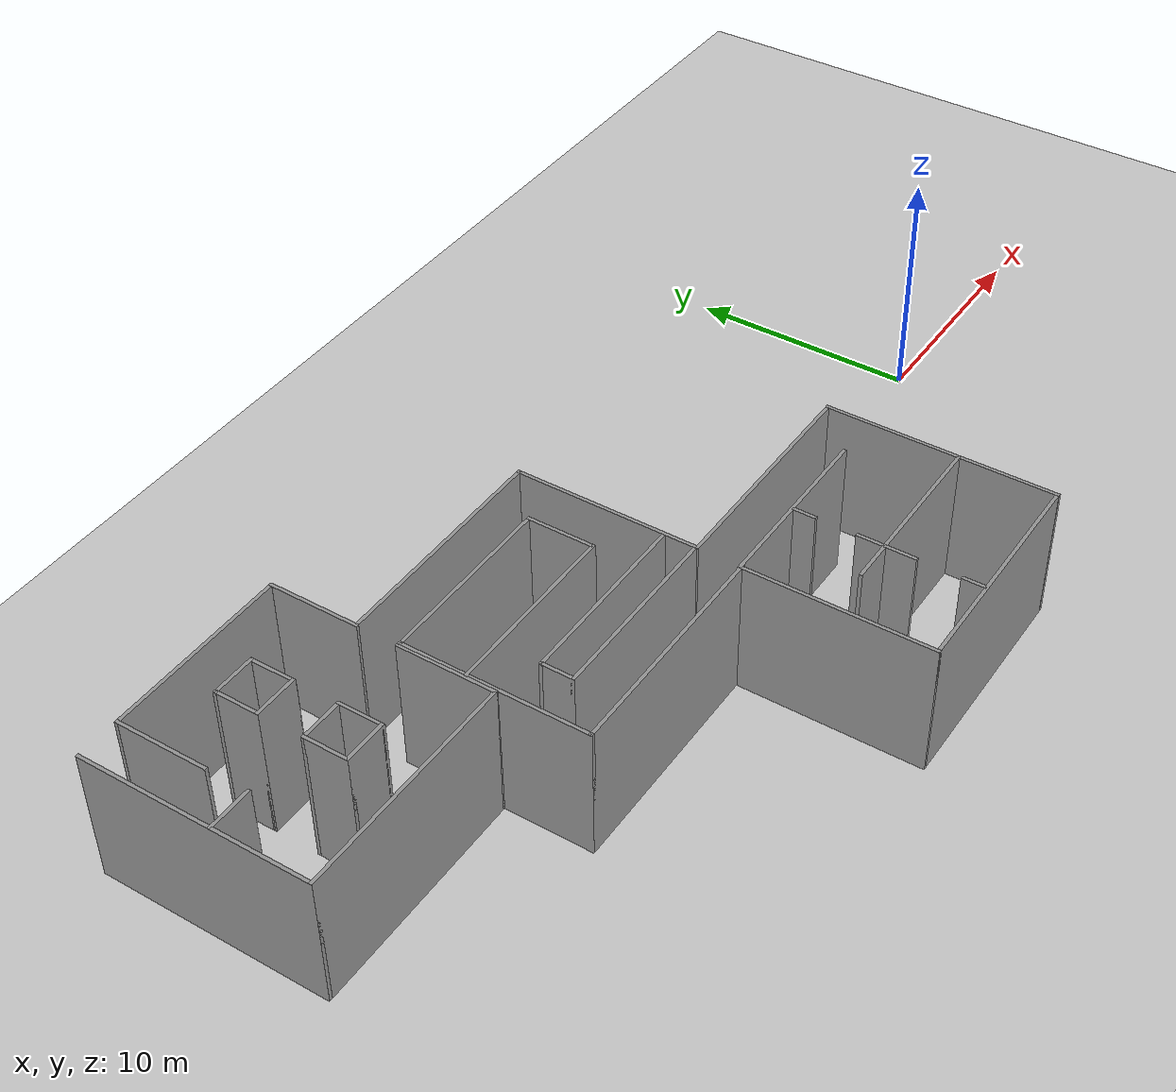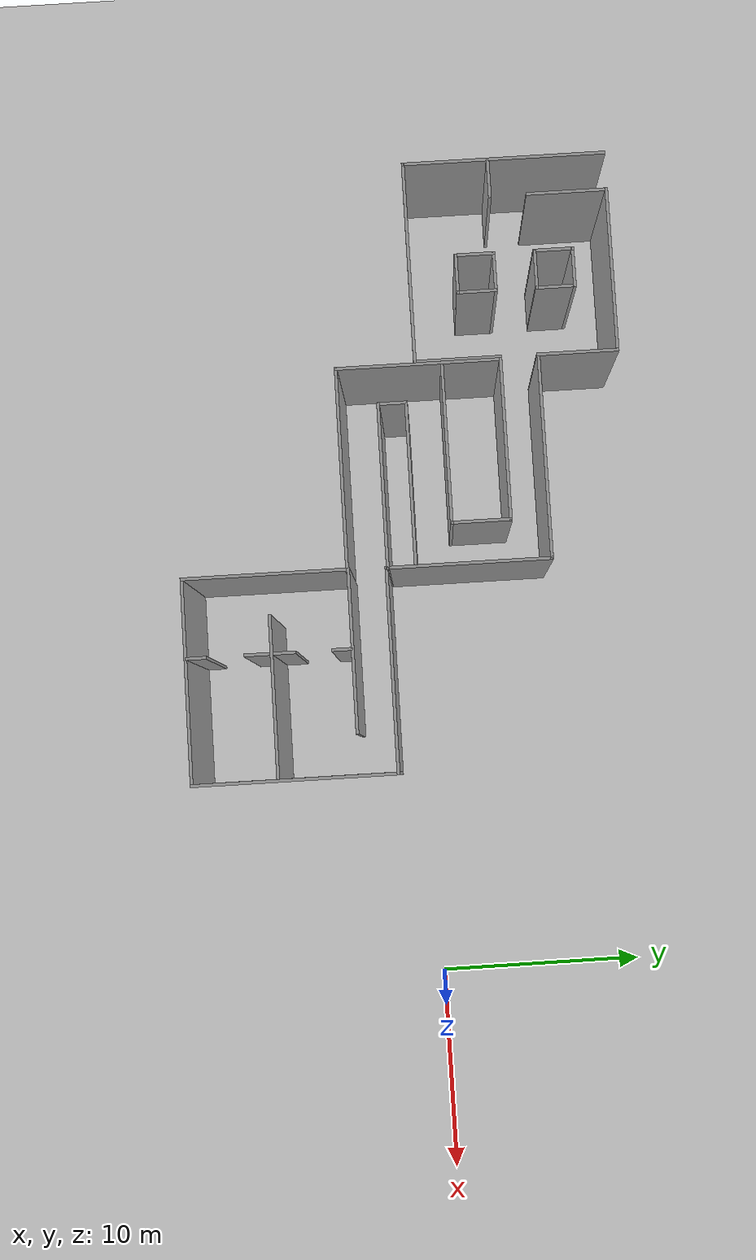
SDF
<sdf version="1.6">
 <world name="default">
  <model name="ground_plane">
   <static>1</static>
   <link name="link">
    <collision name="collision">
     <geometry><plane><normal>0 0 1</normal><size>100 100</size></plane></geometry>
     <surface>
      <contact><collide_bitmask>65535</collide_bitmask></contact>
      <friction><ode><mu>100</mu><mu2>50</mu2></ode></friction>
     </surface>
    </collision>
    <visual name="visual">
     <cast_shadows>0</cast_shadows>
     <geometry><plane><normal>0 0 1</normal><size>100 100</size></plane></geometry>
     <material>
      <script><uri>file://media/materials/scripts/gazebo.material</uri><name>Gazebo/Grey</name></script>
     </material>
    </visual>
   </link>
  </model>
  <model name="floor01_clone">
   <pose>-25.0322 1.41171 0 0 -0 0</pose>
   <link name="Wall_119">
    <collision name="Wall_119_Collision">
     <geometry><box><size>10 0.15 6</size></box></geometry>
     <pose>0 0 3 0 -0 0</pose>
    </collision>
    <visual name="Wall_119_Visual">
     <pose>0 0 3 0 -0 0</pose>
     <geometry><box><size>10 0.15 6</size></box></geometry>
     <material>
      <script><uri>file://media/materials/scripts/gazebo.material</uri><name>Gazebo/Grey</name></script>
      <ambient>1 1 1 1</ambient>
     </material>
     <meta><layer>0</layer></meta>
    </visual>
    <pose>0 -4.925 0 0 -0 0</pose>
   </link>
   <link name="Wall_121">
    <collision name="Wall_121_Collision">
     <geometry><box><size>10 0.15 6</size></box></geometry>
     <pose>0 0 3 0 -0 0</pose>
    </collision>
    <visual name="Wall_121_Visual">
     <pose>0 0 3 0 -0 0</pose>
     <geometry><box><size>10 0.15 6</size></box></geometry>
     <material>
      <script><uri>file://media/materials/scripts/gazebo.material</uri><name>Gazebo/Grey</name></script>
      <ambient>1 1 1 1</ambient>
     </material>
     <meta><layer>0</layer></meta>
    </visual>
    <pose>0 4.925 0 0 -0 3.14159</pose>
   </link>
   <link name="Wall_124">
    <collision name="Wall_124_Collision">
     <geometry><box><size>8 0.15 6</size></box></geometry>
     <pose>0 0 3 0 -0 0</pose>
    </collision>
    <visual name="Wall_124_Visual">
     <pose>0 0 3 0 -0 0</pose>
     <geometry><box><size>8 0.15 6</size></box></geometry>
     <material>
      <script><uri>file://media/materials/scripts/gazebo.material</uri><name>Gazebo/Grey</name></script>
      <ambient>1 1 1 1</ambient>
     </material>
     <meta><layer>0</layer></meta>
    </visual>
    <pose>-1 3.075 0 0 -0 0</pose>
   </link>
   <link name="Wall_125">
    <collision name="Wall_125_Collision">
     <geometry><box><size>3 0.15 6</size></box></geometry>
     <pose>0 0 3 0 -0 0</pose>
    </collision>
    <visual name="Wall_125_Visual">
     <pose>0 0 3 0 -0 0</pose>
     <geometry><box><size>3 0.15 6</size></box></geometry>
     <material>
      <script><uri>file://media/materials/scripts/gazebo.material</uri><name>Gazebo/Grey</name></script>
      <ambient>1 1 1 1</ambient>
     </material>
     <meta><layer>0</layer></meta>
    </visual>
    <pose>2.925 1.65 0 0 0 -1.5708</pose>
   </link>
   <link name="Wall_126">
    <collision name="Wall_126_Collision">
     <geometry><box><size>8 0.15 6</size></box></geometry>
     <pose>0 0 3 0 -0 0</pose>
    </collision>
    <visual name="Wall_126_Visual">
     <pose>0 0 3 0 -0 0</pose>
     <geometry><box><size>8 0.15 6</size></box></geometry>
     <material>
      <script><uri>file://media/materials/scripts/gazebo.material</uri><name>Gazebo/Grey</name></script>
      <ambient>1 1 1 1</ambient>
     </material>
     <meta><layer>0</layer></meta>
    </visual>
    <pose>-1 0.225 0 0 -0 3.14159</pose>
   </link>
   <link name="Wall_129">
    <collision name="Wall_129_Collision">
     <geometry><box><size>8 0.15 6</size></box></geometry>
     <pose>0 0 3 0 -0 0</pose>
    </collision>
    <visual name="Wall_129_Visual">
     <pose>0 0 3 0 -0 0</pose>
     <geometry><box><size>8 0.15 6</size></box></geometry>
     <material>
      <script><uri>file://media/materials/scripts/gazebo.material</uri><name>Gazebo/Grey</name></script>
      <ambient>1 1 1 1</ambient>
     </material>
     <meta><layer>0</layer></meta>
    </visual>
    <pose>0.85 -1.625 0 0 -0 0</pose>
   </link>
   <link name="Wall_132">
    <collision name="Wall_132_Collision">
     <geometry><box><size>1.5 0.15 6</size></box></geometry>
     <pose>0 0 3 0 -0 0</pose>
    </collision>
    <visual name="Wall_132_Visual">
     <pose>0 0 3 0 -0 0</pose>
     <geometry><box><size>1.5 0.15 6</size></box></geometry>
     <material>
      <script><uri>file://media/materials/scripts/gazebo.material</uri><name>Gazebo/Grey</name></script>
      <ambient>1 1 1 1</ambient>
     </material>
     <meta><layer>0</layer></meta>
    </visual>
    <pose>-3.075 -2.3 0 0 0 -1.5708</pose>
   </link>
   <link name="Wall_133">
    <collision name="Wall_133_Collision">
     <geometry><box><size>8.15 0.15 6</size></box></geometry>
     <pose>0 0 3 0 -0 0</pose>
    </collision>
    <visual name="Wall_133_Visual">
     <pose>0 0 3 0 -0 0</pose>
     <geometry><box><size>8.15 0.15 6</size></box></geometry>
     <material>
      <script><uri>file://media/materials/scripts/gazebo.material</uri><name>Gazebo/Grey</name></script>
      <ambient>1 1 1 1</ambient>
     </material>
     <meta><layer>0</layer></meta>
    </visual>
    <pose>0.925 -2.975 0 0 -0 0</pose>
   </link>
   <link name="Wall_135">
    <collision name="Wall_135_Collision">
     <geometry><box><size>8 0.15 6</size></box></geometry>
     <pose>0 0 3 0 -0 0</pose>
    </collision>
    <visual name="Wall_135_Visual">
     <pose>0 0 3 0 -0 0</pose>
     <geometry><box><size>8 0.15 6</size></box></geometry>
     <material>
      <script><uri>file://media/materials/scripts/gazebo.material</uri><name>Gazebo/Grey</name></script>
      <ambient>1 1 1 1</ambient>
     </material>
     <meta><layer>0</layer></meta>
    </visual>
    <pose>4.925 1 0 0 0 -1.5708</pose>
   </link>
   <link name="Wall_138">
    <collision name="Wall_138_Collision">
     <geometry><box><size>8.15 0.15 6</size></box></geometry>
     <pose>0 0 3 0 -0 0</pose>
    </collision>
    <visual name="Wall_138_Visual">
     <pose>0 0 3 0 -0 0</pose>
     <geometry><box><size>8.15 0.15 6</size></box></geometry>
     <material>
      <script><uri>file://media/materials/scripts/gazebo.material</uri><name>Gazebo/Grey</name></script>
      <ambient>1 1 1 1</ambient>
     </material>
     <meta><layer>0</layer></meta>
    </visual>
    <pose>-4.925 -0.924999 0 0 0 -1.5708</pose>
   </link>
   <static>1</static>
  </model>
  <model name="floor02_clone">
   <pose>-15.201 -6.5544 0 0 -0 0</pose>
   <link name="Wall_141">
    <collision name="Wall_141_Collision">
     <geometry><box><size>10 0.15 6</size></box></geometry>
     <pose>0 0 3 0 -0 0</pose>
    </collision>
    <visual name="Wall_141_Visual">
     <pose>0 0 3 0 -0 0</pose>
     <geometry><box><size>10 0.15 6</size></box></geometry>
     <material>
      <script><uri>file://media/materials/scripts/gazebo.material</uri><name>Gazebo/Grey</name></script>
      <ambient>1 1 1 1</ambient>
     </material>
     <meta><layer>0</layer></meta>
    </visual>
    <pose>-0.0295 -4.915 0 0 -0 0</pose>
   </link>
   <link name="Wall_143">
    <collision name="Wall_143_Collision">
     <geometry><box><size>10 0.15 6</size></box></geometry>
     <pose>0 0 3 0 -0 0</pose>
    </collision>
    <visual name="Wall_143_Visual">
     <pose>0 0 3 0 -0 0</pose>
     <geometry><box><size>10 0.15 6</size></box></geometry>
     <material>
      <script><uri>file://media/materials/scripts/gazebo.material</uri><name>Gazebo/Grey</name></script>
      <ambient>1 1 1 1</ambient>
     </material>
     <meta><layer>0</layer></meta>
    </visual>
    <pose>0.0295 4.925 0 0 -0 3.14159</pose>
   </link>
   <link name="Wall_147">
    <collision name="Wall_147_Collision">
     <geometry><box><size>8 0.15 6</size></box></geometry>
     <pose>0 0 3 0 -0 0</pose>
    </collision>
    <visual name="Wall_147_Visual">
     <pose>0 0 3 0 -0 0</pose>
     <geometry><box><size>8 0.15 6</size></box></geometry>
     <material>
      <script><uri>file://media/materials/scripts/gazebo.material</uri><name>Gazebo/Grey</name></script>
      <ambient>1 1 1 1</ambient>
     </material>
     <meta><layer>0</layer></meta>
    </visual>
    <pose>-1.0295 3.085 0 0 -0 0</pose>
   </link>
   <link name="Wall_149">
    <collision name="Wall_149_Collision">
     <geometry><box><size>1 0.15 6</size></box></geometry>
     <pose>0 0 3 0 -0 0</pose>
    </collision>
    <visual name="Wall_149_Visual">
     <pose>0 0 3 0 -0 0</pose>
     <geometry><box><size>1 0.15 6</size></box></geometry>
     <material>
      <script><uri>file://media/materials/scripts/gazebo.material</uri><name>Gazebo/Grey</name></script>
      <ambient>1 1 1 1</ambient>
     </material>
     <meta><layer>0</layer></meta>
    </visual>
    <pose>-1.1165 2.581 0 0 0 -1.5708</pose>
   </link>
   <link name="Wall_151">
    <collision name="Wall_151_Collision">
     <geometry><box><size>2.5 0.15 6</size></box></geometry>
     <pose>0 0 3 0 -0 0</pose>
    </collision>
    <visual name="Wall_151_Visual">
     <pose>0 0 3 0 -0 0</pose>
     <geometry><box><size>2.5 0.15 6</size></box></geometry>
     <material>
      <script><uri>file://media/materials/scripts/gazebo.material</uri><name>Gazebo/Grey</name></script>
      <ambient>1 1 1 1</ambient>
     </material>
     <meta><layer>0</layer></meta>
    </visual>
    <pose>-1.1165 -0.869001 0 0 0 -1.5708</pose>
   </link>
   <link name="Wall_153">
    <collision name="Wall_153_Collision">
     <geometry><box><size>1 0.15 6</size></box></geometry>
     <pose>0 0 3 0 -0 0</pose>
    </collision>
    <visual name="Wall_153_Visual">
     <pose>0 0 3 0 -0 0</pose>
     <geometry><box><size>1 0.15 6</size></box></geometry>
     <material>
      <script><uri>file://media/materials/scripts/gazebo.material</uri><name>Gazebo/Grey</name></script>
      <ambient>1 1 1 1</ambient>
     </material>
     <meta><layer>0</layer></meta>
    </visual>
    <pose>-1.1165 -4.409 0 0 0 -1.5708</pose>
   </link>
   <link name="Wall_156">
    <collision name="Wall_156_Collision">
     <geometry><box><size>8 0.15 6</size></box></geometry>
     <pose>0 0 3 0 -0 0</pose>
    </collision>
    <visual name="Wall_156_Visual">
     <pose>0 0 3 0 -0 0</pose>
     <geometry><box><size>8 0.15 6</size></box></geometry>
     <material>
      <script><uri>file://media/materials/scripts/gazebo.material</uri><name>Gazebo/Grey</name></script>
      <ambient>1 1 1 1</ambient>
     </material>
     <meta><layer>0</layer></meta>
    </visual>
    <pose>1.0085 -0.794001 0 0 -0 3.14159</pose>
   </link>
   <link name="Wall_161">
    <collision name="Wall_161_Collision">
     <geometry><box><size>10 0.15 6</size></box></geometry>
     <pose>0 0 3 0 -0 0</pose>
    </collision>
    <visual name="Wall_161_Visual">
     <pose>0 0 3 0 -0 0</pose>
     <geometry><box><size>10 0.15 6</size></box></geometry>
     <material>
      <script><uri>file://media/materials/scripts/gazebo.material</uri><name>Gazebo/Grey</name></script>
      <ambient>1 1 1 1</ambient>
     </material>
     <meta><layer>0</layer></meta>
    </visual>
    <pose>4.9545 0 0 0 0 -1.5708</pose>
   </link>
   <link name="Wall_165">
    <collision name="Wall_165_Collision">
     <geometry><box><size>8.15 0.15 6</size></box></geometry>
     <pose>0 0 3 0 -0 0</pose>
    </collision>
    <visual name="Wall_165_Visual">
     <pose>0 0 3 0 -0 0</pose>
     <geometry><box><size>8.15 0.15 6</size></box></geometry>
     <material>
      <script><uri>file://media/materials/scripts/gazebo.material</uri><name>Gazebo/Grey</name></script>
      <ambient>1 1 1 1</ambient>
     </material>
     <meta><layer>0</layer></meta>
    </visual>
    <pose>-4.9545 -0.915001 0 0 0 -1.5708</pose>
   </link>
   <static>1</static>
  </model>
  <model name="floor09">
   <pose>-35 5.26212 0 0 -0 0</pose>
   <link name="Wall_31">
    <collision name="Wall_31_Collision">
     <geometry><box><size>10 0.15 6</size></box></geometry>
     <pose>0 0 3 0 -0 0</pose>
    </collision>
    <visual name="Wall_31_Visual">
     <pose>0 0 3 0 -0 0</pose>
     <geometry><box><size>10 0.15 6</size></box></geometry>
     <material>
      <script><uri>file://media/materials/scripts/gazebo.material</uri><name>Gazebo/Grey</name></script>
      <ambient>1 1 1 1</ambient>
     </material>
     <meta><layer>0</layer></meta>
    </visual>
    <pose>-4.925 0 0 0 0 -1.5708</pose>
   </link>
   <link name="Wall_32">
    <collision name="Wall_32_Collision">
     <geometry><box><size>10 0.15 6</size></box></geometry>
     <pose>0 0 3 0 -0 0</pose>
    </collision>
    <visual name="Wall_32_Visual">
     <pose>0 0 3 0 -0 0</pose>
     <geometry><box><size>10 0.15 6</size></box></geometry>
     <material>
      <script><uri>file://media/materials/scripts/gazebo.material</uri><name>Gazebo/Grey</name></script>
      <ambient>1 1 1 1</ambient>
     </material>
     <meta><layer>0</layer></meta>
    </visual>
    <pose>0 -4.925 0 0 -0 0</pose>
   </link>
   <link name="Wall_37">
    <collision name="Wall_37_Collision">
     <geometry><box><size>4 0.15 6</size></box></geometry>
     <pose>0 0 3 0 -0 0</pose>
    </collision>
    <visual name="Wall_37_Visual">
     <pose>0 0 3 0 -0 0</pose>
     <geometry><box><size>4 0.15 6</size></box></geometry>
     <material>
      <script><uri>file://media/materials/scripts/gazebo.material</uri><name>Gazebo/Grey</name></script>
      <ambient>1 1 1 1</ambient>
     </material>
     <meta><layer>0</layer></meta>
    </visual>
    <pose>-3.075 3 0 0 0 -1.5708</pose>
   </link>
   <link name="Wall_39">
    <collision name="Wall_39_Collision">
     <geometry><box><size>2 0.15 6</size></box></geometry>
     <pose>0 0 3 0 -0 0</pose>
    </collision>
    <visual name="Wall_39_Visual">
     <pose>0 0 3 0 -0 0</pose>
     <geometry><box><size>2 0.15 6</size></box></geometry>
     <material>
      <script><uri>file://media/materials/scripts/gazebo.material</uri><name>Gazebo/Grey</name></script>
      <ambient>1 1 1 1</ambient>
     </material>
     <meta><layer>0</layer></meta>
    </visual>
    <pose>-4 -0.775 0 0 -0 3.14159</pose>
   </link>
   <link name="Wall_41">
    <collision name="Wall_41_Collision">
     <geometry><box><size>8 0.15 6</size></box></geometry>
     <pose>0 0 3 0 -0 0</pose>
    </collision>
    <visual name="Wall_41_Visual">
     <pose>0 0 3 0 -0 0</pose>
     <geometry><box><size>8 0.15 6</size></box></geometry>
     <material>
      <script><uri>file://media/materials/scripts/gazebo.material</uri><name>Gazebo/Grey</name></script>
      <ambient>1 1 1 1</ambient>
     </material>
     <meta><layer>0</layer></meta>
    </visual>
    <pose>0.85 4.925 0 0 -0 0</pose>
   </link>
   <link name="Wall_43">
    <collision name="Wall_43_Collision">
     <geometry><box><size>2 0.15 6</size></box></geometry>
     <pose>0 0 3 0 -0 0</pose>
    </collision>
    <visual name="Wall_43_Visual">
     <pose>0 0 3 0 -0 0</pose>
     <geometry><box><size>2 0.15 6</size></box></geometry>
     <material>
      <script><uri>file://media/materials/scripts/gazebo.material</uri><name>Gazebo/Grey</name></script>
      <ambient>1 1 1 1</ambient>
     </material>
     <meta><layer>0</layer></meta>
    </visual>
    <pose>-0.224999 2.15 0 0 0 -1.5708</pose>
   </link>
   <link name="Wall_44">
    <collision name="Wall_44_Collision">
     <geometry><box><size>2 0.15 6</size></box></geometry>
     <pose>0 0 3 0 -0 0</pose>
    </collision>
    <visual name="Wall_44_Visual">
     <pose>0 0 3 0 -0 0</pose>
     <geometry><box><size>2 0.15 6</size></box></geometry>
     <material>
      <script><uri>file://media/materials/scripts/gazebo.material</uri><name>Gazebo/Grey</name></script>
      <ambient>1 1 1 1</ambient>
     </material>
     <meta><layer>0</layer></meta>
    </visual>
    <pose>0.7 1.225 0 0 -0 0</pose>
   </link>
   <link name="Wall_45">
    <collision name="Wall_45_Collision">
     <geometry><box><size>2 0.15 6</size></box></geometry>
     <pose>0 0 3 0 -0 0</pose>
    </collision>
    <visual name="Wall_45_Visual">
     <pose>0 0 3 0 -0 0</pose>
     <geometry><box><size>2 0.15 6</size></box></geometry>
     <material>
      <script><uri>file://media/materials/scripts/gazebo.material</uri><name>Gazebo/Grey</name></script>
      <ambient>1 1 1 1</ambient>
     </material>
     <meta><layer>0</layer></meta>
    </visual>
    <pose>1.625 2.15 0 0 -0 1.5708</pose>
   </link>
   <link name="Wall_46">
    <collision name="Wall_46_Collision">
     <geometry><box><size>2 0.15 6</size></box></geometry>
     <pose>0 0 3 0 -0 0</pose>
    </collision>
    <visual name="Wall_46_Visual">
     <pose>0 0 3 0 -0 0</pose>
     <geometry><box><size>2 0.15 6</size></box></geometry>
     <material>
      <script><uri>file://media/materials/scripts/gazebo.material</uri><name>Gazebo/Grey</name></script>
      <ambient>1 1 1 1</ambient>
     </material>
     <meta><layer>0</layer></meta>
    </visual>
    <pose>0.7 3.075 0 0 -0 3.14159</pose>
   </link>
   <link name="Wall_48">
    <collision name="Wall_48_Collision">
     <geometry><box><size>2 0.15 6</size></box></geometry>
     <pose>0 0 3 0 -0 0</pose>
    </collision>
    <visual name="Wall_48_Visual">
     <pose>0 0 3 0 -0 0</pose>
     <geometry><box><size>2 0.15 6</size></box></geometry>
     <material>
      <script><uri>file://media/materials/scripts/gazebo.material</uri><name>Gazebo/Grey</name></script>
      <ambient>1 1 1 1</ambient>
     </material>
     <meta><layer>0</layer></meta>
    </visual>
    <pose>-0.224999 -1.7 0 0 0 -1.5708</pose>
   </link>
   <link name="Wall_49">
    <collision name="Wall_49_Collision">
     <geometry><box><size>2 0.15 6</size></box></geometry>
     <pose>0 0 3 0 -0 0</pose>
    </collision>
    <visual name="Wall_49_Visual">
     <pose>0 0 3 0 -0 0</pose>
     <geometry><box><size>2 0.15 6</size></box></geometry>
     <material>
      <script><uri>file://media/materials/scripts/gazebo.material</uri><name>Gazebo/Grey</name></script>
      <ambient>1 1 1 1</ambient>
     </material>
     <meta><layer>0</layer></meta>
    </visual>
    <pose>0.7 -2.625 0 0 -0 0</pose>
   </link>
   <link name="Wall_50">
    <collision name="Wall_50_Collision">
     <geometry><box><size>2 0.15 6</size></box></geometry>
     <pose>0 0 3 0 -0 0</pose>
    </collision>
    <visual name="Wall_50_Visual">
     <pose>0 0 3 0 -0 0</pose>
     <geometry><box><size>2 0.15 6</size></box></geometry>
     <material>
      <script><uri>file://media/materials/scripts/gazebo.material</uri><name>Gazebo/Grey</name></script>
      <ambient>1 1 1 1</ambient>
     </material>
     <meta><layer>0</layer></meta>
    </visual>
    <pose>1.625 -1.7 0 0 -0 1.5708</pose>
   </link>
   <link name="Wall_51">
    <collision name="Wall_51_Collision">
     <geometry><box><size>2 0.15 6</size></box></geometry>
     <pose>0 0 3 0 -0 0</pose>
    </collision>
    <visual name="Wall_51_Visual">
     <pose>0 0 3 0 -0 0</pose>
     <geometry><box><size>2 0.15 6</size></box></geometry>
     <material>
      <script><uri>file://media/materials/scripts/gazebo.material</uri><name>Gazebo/Grey</name></script>
      <ambient>1 1 1 1</ambient>
     </material>
     <meta><layer>0</layer></meta>
    </visual>
    <pose>0.7 -0.775 0 0 -0 3.14159</pose>
   </link>
   <link name="Wall_53">
    <collision name="Wall_53_Collision">
     <geometry><box><size>4 0.15 6</size></box></geometry>
     <pose>0 0 3 0 -0 0</pose>
    </collision>
    <visual name="Wall_53_Visual">
     <pose>0 0 3 0 -0 0</pose>
     <geometry><box><size>4 0.15 6</size></box></geometry>
     <material>
      <script><uri>file://media/materials/scripts/gazebo.material</uri><name>Gazebo/Grey</name></script>
      <ambient>1 1 1 1</ambient>
     </material>
     <meta><layer>0</layer></meta>
    </visual>
    <pose>4.925 3 0 0 0 -1.5708</pose>
   </link>
   <link name="Wall_55">
    <collision name="Wall_55_Collision">
     <geometry><box><size>4.3 0.15 6</size></box></geometry>
     <pose>0 0 3 0 -0 0</pose>
    </collision>
    <visual name="Wall_55_Visual">
     <pose>0 0 3 0 -0 0</pose>
     <geometry><box><size>4.3 0.15 6</size></box></geometry>
     <material>
      <script><uri>file://media/materials/scripts/gazebo.material</uri><name>Gazebo/Grey</name></script>
      <ambient>1 1 1 1</ambient>
     </material>
     <meta><layer>0</layer></meta>
    </visual>
    <pose>4.925 -2.85 0 0 0 -1.5708</pose>
   </link>
   <static>1</static>
  </model>
 </world>
</sdf>
